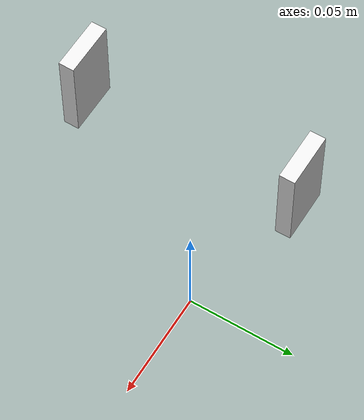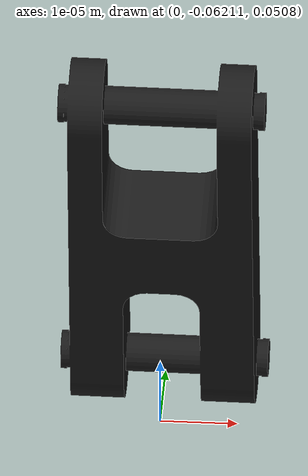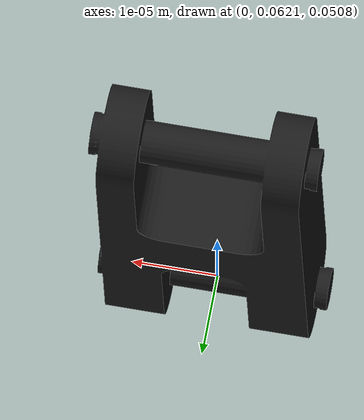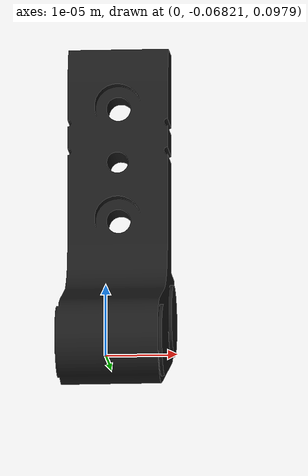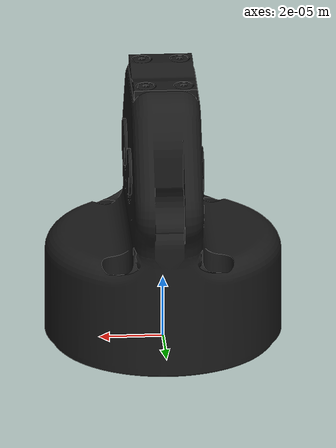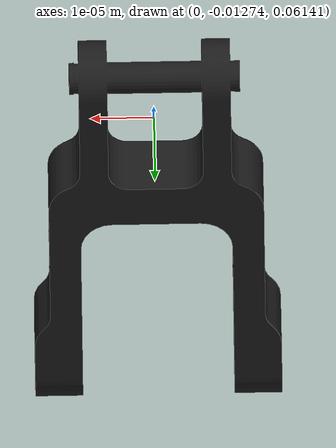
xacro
<?xml version="1.0"?>
<robot name="robotiq_arg2f_85_model" xmlns:xacro="http://ros.org/wiki/xacro">
  <xacro:include filename="/Users/thanhndv212/Develop/agimus-ws/long-tamp/script/ikea_table_prototype/assets/robotiq_2f85/urdf/robotiq_arg2f_85_model_macro.xacro" />
  <xacro:robotiq_arg2f_85 prefix=""/>
</robot>

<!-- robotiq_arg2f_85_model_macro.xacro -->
<robot xmlns:xacro="http://ros.org/wiki/xacro">
  <xacro:include filename="/Users/thanhndv212/Develop/agimus-ws/long-tamp/script/ikea_table_prototype/assets/robotiq_2f85/urdf/robotiq_arg2f_transmission.xacro" />

  <xacro:macro name="outer_knuckle" params="prefix fingerprefix stroke">
    <link name="${prefix}${fingerprefix}_outer_knuckle">
      <visual>
        <origin xyz="0 0 0" rpy="0 0 0" />
        <geometry>
          <mesh filename="/Users/thanhndv212/Develop/agimus-ws/long-tamp/script/ikea_table_prototype/assets/robotiq_2f85/meshes/visual/robotiq_arg2f_85_outer_knuckle.dae" scale="0.001 0.001 0.001"/>
        </geometry>
        <material name="">
          <color rgba="0.792156862745098 0.819607843137255 0.933333333333333 1" />
        </material>
      </visual>
      <collision>
        <origin xyz="0 0 0" rpy="0 0 0" />
        <geometry>
          <mesh filename="/Users/thanhndv212/Develop/agimus-ws/long-tamp/script/ikea_table_prototype/assets/robotiq_2f85/meshes/collision/robotiq_arg2f_85_outer_knuckle.dae" scale="0.001 0.001 0.001"/>
        </geometry>
      </collision>
    </link>
  </xacro:macro>

  <xacro:macro name="outer_finger" params="prefix fingerprefix stroke">
    <link name="${prefix}${fingerprefix}_outer_finger">
      <visual>
        <origin xyz="0 0 0" rpy="0 0 0" />
        <geometry>
          <mesh filename="/Users/thanhndv212/Develop/agimus-ws/long-tamp/script/ikea_table_prototype/assets/robotiq_2f85/meshes/visual/robotiq_arg2f_85_outer_finger.dae" scale="0.001 0.001 0.001"/>
        </geometry>
        <material name="">
          <color rgba="0.1 0.1 0.1 1" />
        </material>
      </visual>
      <collision>
        <origin xyz="0 0 0" rpy="0 0 0" />
        <geometry>
          <mesh filename="/Users/thanhndv212/Develop/agimus-ws/long-tamp/script/ikea_table_prototype/assets/robotiq_2f85/meshes/collision/robotiq_arg2f_85_outer_finger.dae" scale="0.001 0.001 0.001"/>
        </geometry>
      </collision>
    </link>
  </xacro:macro>

  <xacro:macro name="inner_knuckle" params="prefix fingerprefix stroke">
    <link name="${prefix}${fingerprefix}_inner_knuckle">
      <visual>
        <origin xyz="0 0 0" rpy="0 0 0" />
        <geometry>
          <mesh filename="/Users/thanhndv212/Develop/agimus-ws/long-tamp/script/ikea_table_prototype/assets/robotiq_2f85/meshes/visual/robotiq_arg2f_85_inner_knuckle.dae" scale="0.001 0.001 0.001"/>
        </geometry>
        <material name="">
          <color rgba="0.1 0.1 0.1 1" />
        </material>
      </visual>
      <collision>
        <origin xyz="0 0 0" rpy="0 0 0" />
        <geometry>
          <mesh filename="/Users/thanhndv212/Develop/agimus-ws/long-tamp/script/ikea_table_prototype/assets/robotiq_2f85/meshes/collision/robotiq_arg2f_85_inner_knuckle.dae" scale="0.001 0.001 0.001"/>
        </geometry>
      </collision>
    </link>
  </xacro:macro>

  <xacro:macro name="inner_finger" params="prefix fingerprefix stroke">
    <link name="${prefix}${fingerprefix}_inner_finger">
      <visual>
        <origin xyz="0 0 0" rpy="0 0 0" />
        <geometry>
          <mesh filename="/Users/thanhndv212/Develop/agimus-ws/long-tamp/script/ikea_table_prototype/assets/robotiq_2f85/meshes/visual/robotiq_arg2f_85_inner_finger.dae" scale="0.001 0.001 0.001"/>
        </geometry>
        <material name="">
          <color rgba="0.1 0.1 0.1 1" />
        </material>
      </visual>
      <collision>
        <origin xyz="0 0 0" rpy="0 0 0" />
        <geometry>
          <mesh filename="/Users/thanhndv212/Develop/agimus-ws/long-tamp/script/ikea_table_prototype/assets/robotiq_2f85/meshes/collision/robotiq_arg2f_85_inner_finger.dae" scale="0.001 0.001 0.001" />
        </geometry>
      </collision>
    </link>
  </xacro:macro>

   <!-- Finger pad link, the default are the "big pads" with rubber-->
  <xacro:macro name="inner_finger_pad" params="prefix fingerprefix">
    <link name="${prefix}${fingerprefix}_inner_finger_pad">
      <visual>
        <origin xyz="0 0 0" rpy="0 0 0" />
        <geometry>
          <box size="0.022 0.00635 0.0375"/>
        </geometry>
        <material name="">
          <color rgba="0.9 0.9 0.9 1" />
        </material>
      </visual>
      <collision>
        <origin xyz="0 0 0" rpy="0 0 0" />
        <geometry>
           <box size="0.022 0.00635 0.0375"/>
        </geometry>
        <material name="">
          <color rgba="0.9 0.0 0.0 1" />
        </material>
      </collision>
    </link>
  </xacro:macro>

  <xacro:macro name="outer_finger_joint" params="prefix fingerprefix">
    <joint name="${prefix}${fingerprefix}_outer_finger_joint" type="fixed">
      <origin xyz="0 0.0315 -0.0041" rpy="0 0 0"/>
      <parent link="${prefix}${fingerprefix}_outer_knuckle" />
      <child link="${prefix}${fingerprefix}_outer_finger" />
      <axis xyz="1 0 0" />
    </joint>
  </xacro:macro>

  <xacro:macro name="inner_knuckle_joint" params="prefix fingerprefix reflect">
    <joint name="${prefix}${fingerprefix}_inner_knuckle_joint" type="revolute">
      <origin xyz="0 ${reflect * -0.0127} 0.06142" rpy="0 0 ${(1 + reflect) * pi / 2}"/>
      <parent link="${prefix}robotiq_arg2f_base_link" />
      <child link="${prefix}${fingerprefix}_inner_knuckle" />
      <axis xyz="1 0 0" />
      <limit lower="0" upper="0.8757" velocity="2.0" effort="1000" />
      <mimic joint="${prefix}finger_joint" multiplier="1" offset="0" />
    </joint>
  </xacro:macro>

  <xacro:macro name="inner_finger_joint" params="prefix fingerprefix">
    <joint name="${prefix}${fingerprefix}_inner_finger_joint" type="revolute">
      <origin xyz="0 0.0061 0.0471" rpy="0 0 0"/>
      <parent link="${prefix}${fingerprefix}_outer_finger" />
      <child link="${prefix}${fingerprefix}_inner_finger" />
      <axis xyz="1 0 0" />
      <limit lower="0" upper="0.8757" velocity="2.0" effort="1000" />
      <mimic joint="${prefix}finger_joint" multiplier="-1" offset="0" />
    </joint>
  </xacro:macro>

  <xacro:macro name="inner_finger_pad_joint" params="prefix fingerprefix">
    <joint name="${prefix}${fingerprefix}_inner_finger_pad_joint" type="fixed">
      <origin xyz="0 -0.0220203446692936 0.03242" rpy="0 0 0"/>
      <parent link="${prefix}${fingerprefix}_inner_finger" />
      <child link="${prefix}${fingerprefix}_inner_finger_pad" />
      <axis xyz="0 0 1" />
    </joint>
  </xacro:macro>

  <xacro:include filename="/Users/thanhndv212/Develop/agimus-ws/long-tamp/script/ikea_table_prototype/assets/robotiq_2f85/urdf/robotiq_arg2f.xacro" />

  <xacro:macro name="finger_joint" params="prefix">
    <joint name="${prefix}finger_joint" type="revolute">
      <origin xyz="0 -0.0306011 0.054904" rpy="0 0 ${pi}"/>
      <parent link="${prefix}robotiq_arg2f_base_link" />
      <child link="${prefix}left_outer_knuckle" />
      <axis xyz="1 0 0" />
      <limit lower="0" upper="0.8" velocity="2.0" effort="1000" />
    </joint>
    <xacro:finger_joints prefix="${prefix}" fingerprefix="left" reflect="1.0"/>
  </xacro:macro>

  <xacro:macro name="right_outer_knuckle_joint" params="prefix">
    <joint name="${prefix}right_outer_knuckle_joint" type="revolute">
      <origin xyz="0 0.0306011 0.054904" rpy="0 0 0"/>
      <parent link="${prefix}robotiq_arg2f_base_link" />
      <child link="${prefix}right_outer_knuckle" />
      <axis xyz="1 0 0" />
      <limit lower="0" upper="0.81" velocity="2.0" effort="1000" />
      <mimic joint="${prefix}finger_joint" multiplier="1" offset="0" />
    </joint>
    <xacro:finger_joints prefix="${prefix}" fingerprefix="right" reflect="-1.0"/>
  </xacro:macro>

  <!-- Initialization of all joints and links -->
  <xacro:macro name="robotiq_arg2f_85" params="prefix">
    <xacro:robotiq_arg2f_base_link prefix="${prefix}"/>
    <xacro:finger_links prefix="${prefix}" fingerprefix="left" stroke="85"/>
    <xacro:finger_links prefix="${prefix}" fingerprefix="right" stroke="85"/>
    <xacro:finger_joint prefix="${prefix}"/>
    <xacro:right_outer_knuckle_joint prefix="${prefix}"/>
    <xacro:robotiq_arg2f_transmission prefix="${prefix}"/>
  </xacro:macro>
</robot>

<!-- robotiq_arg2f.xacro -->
<robot xmlns:xacro="http://ros.org/wiki/xacro">
  <xacro:macro name="robotiq_arg2f_base_link" params="prefix">
    <link name="${prefix}robotiq_arg2f_base_link">
      <inertial>
        <origin xyz="8.625E-08 -4.6583E-06 0.03145" rpy="0 0 0" />
        <mass value="0.22652" />
        <inertia ixx="0.00020005" ixy="-4.2442E-10" ixz="-2.9069E-10" iyy="0.00017832" iyz="-3.4402E-08" izz="0.00013478" />
      </inertial>
      <visual>
        <origin xyz="0 0 0" rpy="0 0 0" />
        <geometry>
          <mesh filename="/Users/thanhndv212/Develop/agimus-ws/long-tamp/script/ikea_table_prototype/assets/robotiq_2f85/meshes/visual/robotiq_arg2f_85_base_link.dae" scale="0.001 0.001 0.001"/>
        </geometry>
        <material name="">
          <color rgba="0.1 0.1 0.1 1" />
        </material>
      </visual>
      <collision>
        <origin xyz="0 0 0" rpy="0 0 0" />
        <geometry>
           <mesh filename="/Users/thanhndv212/Develop/agimus-ws/long-tamp/script/ikea_table_prototype/assets/robotiq_2f85/meshes/collision/robotiq_arg2f_base_link.stl" />
        </geometry>
      </collision>
    </link>
  </xacro:macro>

  <xacro:macro name="finger_joints" params="prefix fingerprefix reflect">
    <xacro:outer_finger_joint prefix="${prefix}" fingerprefix="${fingerprefix}"/>
    <xacro:inner_knuckle_joint prefix="${prefix}" fingerprefix="${fingerprefix}" reflect="${reflect}"/>
    <xacro:inner_finger_joint prefix="${prefix}" fingerprefix="${fingerprefix}"/>
    <xacro:inner_finger_pad_joint prefix="${prefix}" fingerprefix="${fingerprefix}"/>
  </xacro:macro>

  <xacro:macro name="finger_links" params="prefix fingerprefix stroke">
    <xacro:outer_knuckle prefix="${prefix}" fingerprefix="${fingerprefix}" stroke="${stroke}"/>
    <xacro:outer_finger prefix="${prefix}" fingerprefix="${fingerprefix}" stroke="${stroke}"/>
    <xacro:inner_finger prefix="${prefix}" fingerprefix="${fingerprefix}" stroke="${stroke}"/>
    <xacro:inner_finger_pad prefix="${prefix}" fingerprefix="${fingerprefix}"/>
    <xacro:inner_knuckle prefix="${prefix}" fingerprefix="${fingerprefix}" stroke="${stroke}"/>
  </xacro:macro>
</robot>
